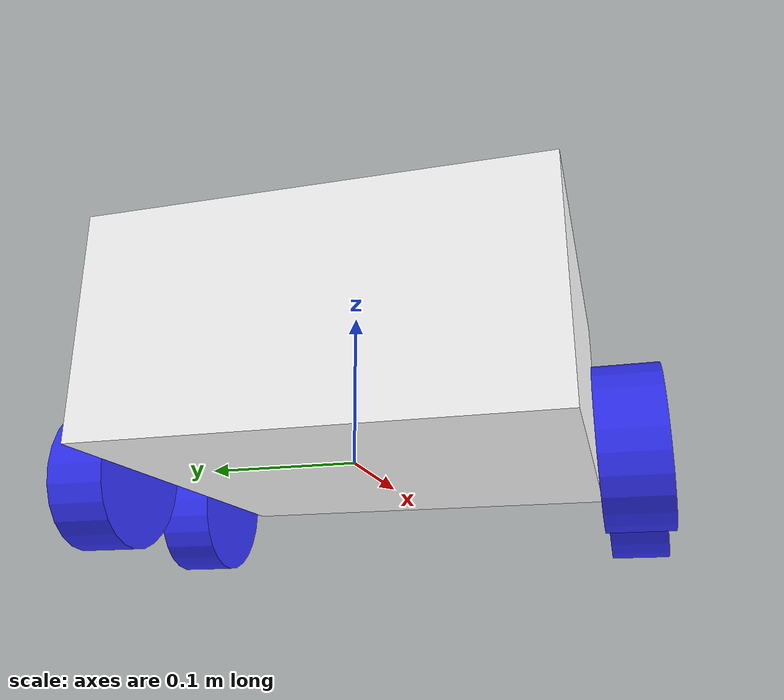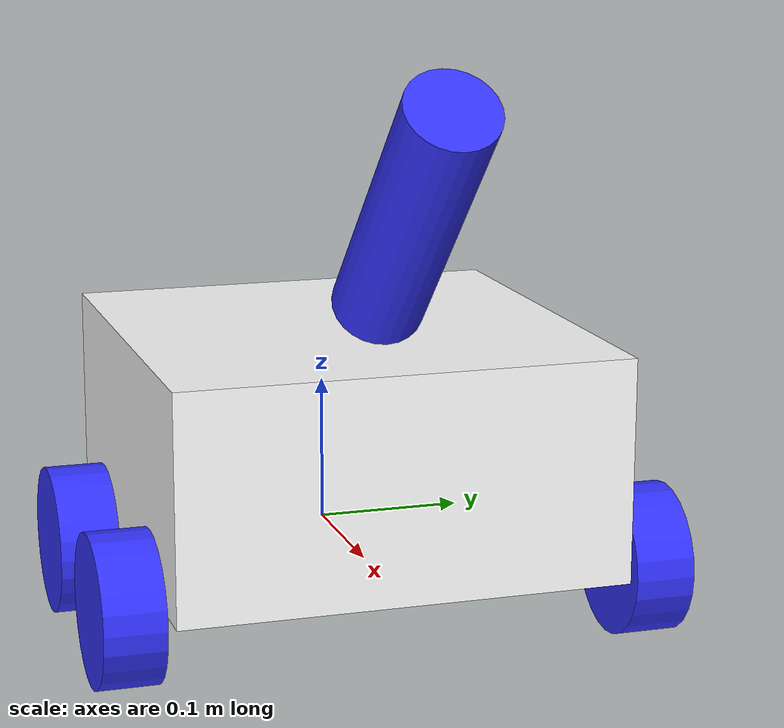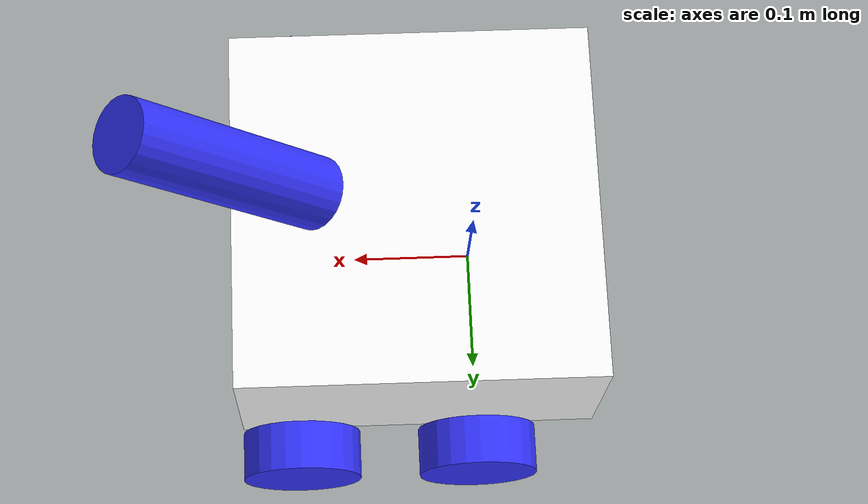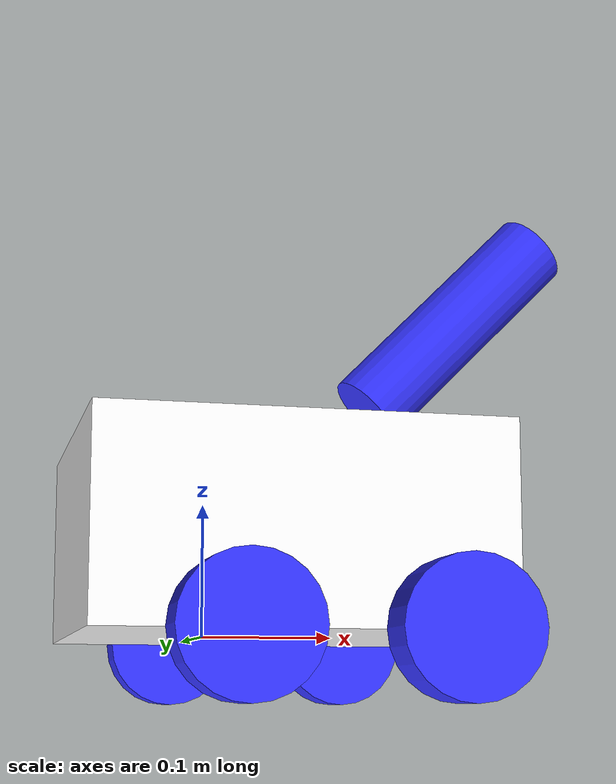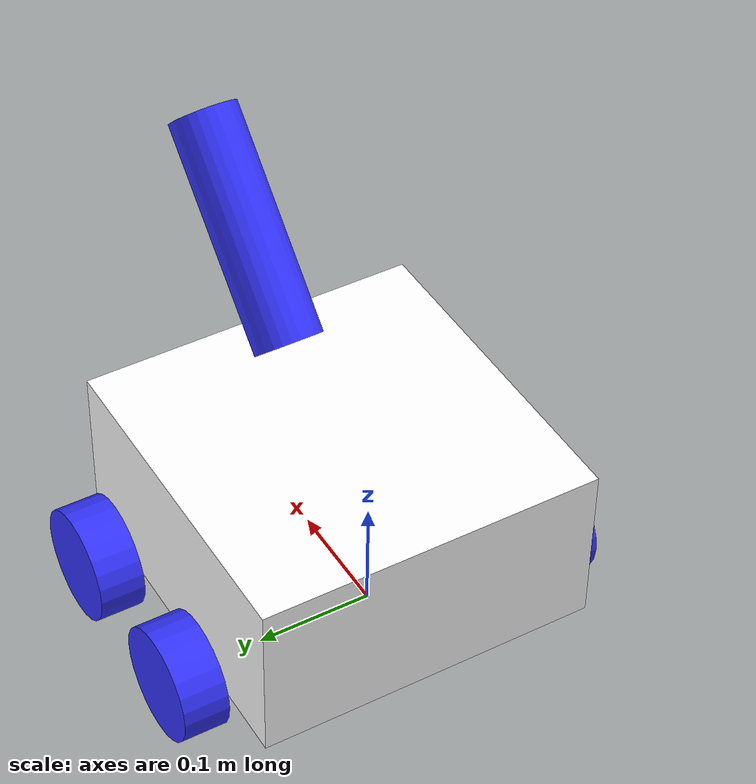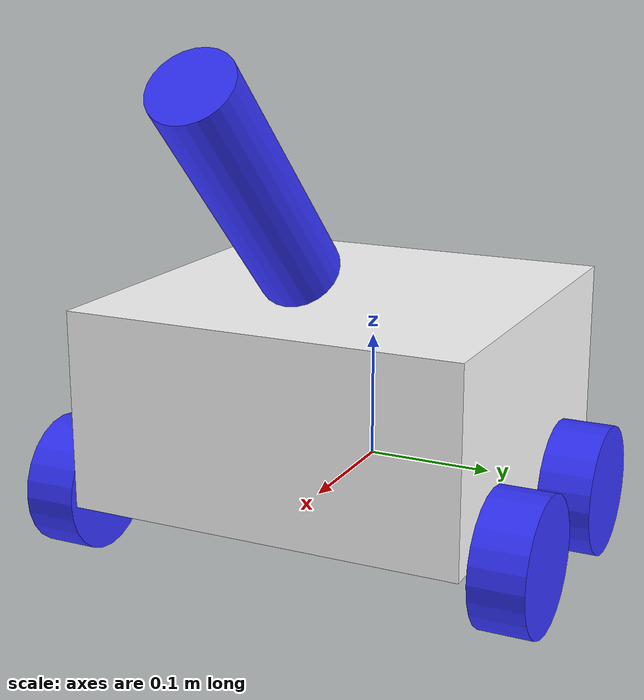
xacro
<?xml version="1.0"?>
<robot xmlns:xacro="http://www.ros.org/wiki/xacro" >

    <xacro:include filename="inertial_macros.xacro"/>

    <material name="white">
        <color rgba="1 1 1 1" />
    </material>

    <material name="orange">
        <color rgba="1 0.3 0.1 1"/>
    </material>

    <material name="blue">
        <color rgba="0.2 0.2 1 1"/>
    </material>

    <material name="black">
        <color rgba="0 0 0 1"/>
    </material>
    <material name="red">
        <color rgba="1 0 0 1"/>
    </material>

    <!-- BASE LINK -->

    <link name="base_link">

    </link>

    <!-- CHASSIS LINK -->

    <joint name="chassis_joint" type="fixed">
        <parent link="base_link"/>
        <child link="chassis"/>
        <origin xyz="-0.1 0 0"/>
    </joint>

    <link name="chassis">
        <visual>
            <origin xyz="0.15 0 0.075"/>
            <geometry>
                <box size="0.3 0.3 0.15"/>
            </geometry>
            <material name="white"/>
        </visual>
        <collision>
            <origin xyz="0.15 0 0.075"/>
            <geometry>
                <box size="0.3 0.3 0.15"/>
            </geometry>
        </collision>
        <xacro:inertial_box mass="0.5" x="0.3" y="0.3" z="0.15">
            <origin xyz="0.15 0 0.075" rpy="0 0 0"/>
        </xacro:inertial_box>
    </link>

    <gazebo reference="chassis">
        <material> Gazebo/White</material>
    </gazebo>
    <!-- LEFT WHEEL LINK -->

    <joint name="left_wheel_joint1" type="continuous">
        <parent link="base_link"/>
        <child link="left_wheel1"/>
        <origin xyz="0 0.175 0" rpy="-${pi/2} 0 0" />
        <axis xyz="0 0 1"/>
    </joint>

    <link name="left_wheel1">
        <visual>
            <geometry>
                <cylinder radius="0.05" length="0.04"/>
            </geometry>
            <material name="blue"/>
        </visual>
        <collision>
            <geometry>
                <cylinder radius="0.05" length="0.04"/>
            </geometry>
        </collision>
        <xacro:inertial_cylinder mass="0.1" length="0.04" radius="0.05">
            <origin xyz="0 0 0" rpy="0 0 0"/>
        </xacro:inertial_cylinder>
    </link>
    <gazebo reference="left_wheel1">
        <material> Gazebo/Blue</material>
    </gazebo>

    <joint name="left_wheel_joint2" type="continuous">
        <parent link="base_link"/>
        <child link="left_wheel2"/>
        <origin xyz="0.15 0.175 0" rpy="-${pi/2} 0 0" />
        <axis xyz="0 0 1"/>
    </joint>

    <link name="left_wheel2">
        <visual>
            <geometry>
                <cylinder radius="0.05" length="0.04"/>
            </geometry>
            <material name="blue"/>
        </visual>
        <collision>
            <geometry>
                <cylinder radius="0.05" length="0.04"/>
            </geometry>
        </collision>
        <xacro:inertial_cylinder mass="0.1" length="0.04" radius="0.05">
            <origin xyz="0 0 0" rpy="0 0 0"/>
        </xacro:inertial_cylinder>
    </link>
    <gazebo reference="left_wheel2">
        <material> Gazebo/Blue</material>
    </gazebo>
    <!-- RIGHT WHEEL LINK -->

    <joint name="right_wheel_joint1" type="continuous">
        <parent link="base_link"/>
        <child link="right_wheel1"/>
        <origin xyz="0 -0.175 0" rpy="${pi/2} 0 0" />
        <axis xyz="0 0 -1"/>
    </joint>

    <link name="right_wheel1">
        <visual>
            <geometry>
                <cylinder radius="0.05" length="0.04"/>
            </geometry>
            <material name="blue"/>
        </visual>
        <collision>
            <geometry>
                <cylinder radius="0.05" length="0.04"/>
            </geometry>
        </collision>
        <xacro:inertial_cylinder mass="0.1" length="0.04" radius="0.05">
            <origin xyz="0 0 0" rpy="0 0 0"/>
        </xacro:inertial_cylinder>
    </link>
    <gazebo reference="right_wheel1">
        <material> Gazebo/Blue</material>
    </gazebo>

    <joint name="right_wheel_joint2" type="continuous">
        <parent link="base_link"/>
        <child link="right_wheel2"/>
        <origin xyz="0.15 -0.175 0" rpy="${pi/2} 0 0" />
        <axis xyz="0 0 -1"/>
    </joint>

    <link name="right_wheel2">
        <visual>
            <geometry>
                <cylinder radius="0.05" length="0.04"/>
            </geometry>
            <material name="blue"/>
        </visual>
        <collision>
            <geometry>
                <cylinder radius="0.05" length="0.04"/>
            </geometry>
        </collision>
        <xacro:inertial_cylinder mass="0.1" length="0.04" radius="0.05">
            <origin xyz="0 0 0" rpy="0 0 0"/>
        </xacro:inertial_cylinder>
    </link>
    <gazebo reference="right_wheel2">
        <material> Gazebo/Blue</material>
    </gazebo>

    <joint name="arm_joint_one" type="fixed">
        <parent link="chassis"/>
        <child link="first_arm"/>
        <origin xyz="0.3 0 0.25" rpy="0 ${pi/4} 0" />

    </joint>

    <link name="first_arm">
        <visual>
            <geometry>
                <cylinder radius="0.03" length="0.2"/>
            </geometry>
            <material name="blue"/>
        </visual>
        <collision>
            <geometry>
                <cylinder radius="0.05" length="0.2"/>
            </geometry>
        </collision>
        <xacro:inertial_cylinder mass="0.1" length="0.2" radius="0.03">
            <origin xyz="0 0 0" rpy="0 0 0"/>
        </xacro:inertial_cylinder>
    </link>
    <gazebo reference="first_arm">
        <material> Gazebo/Blue</material>
    </gazebo>

</robot>
